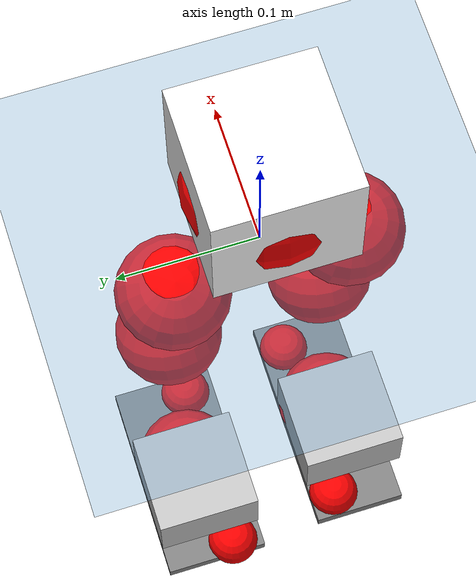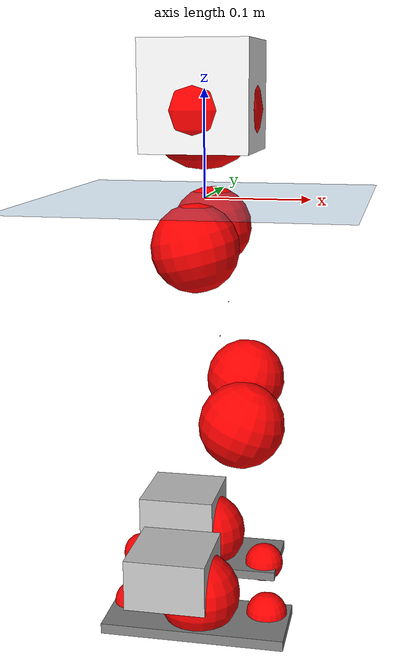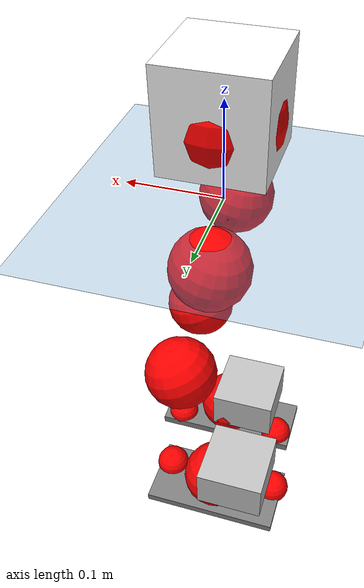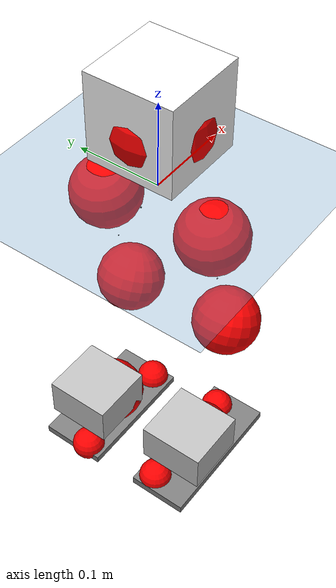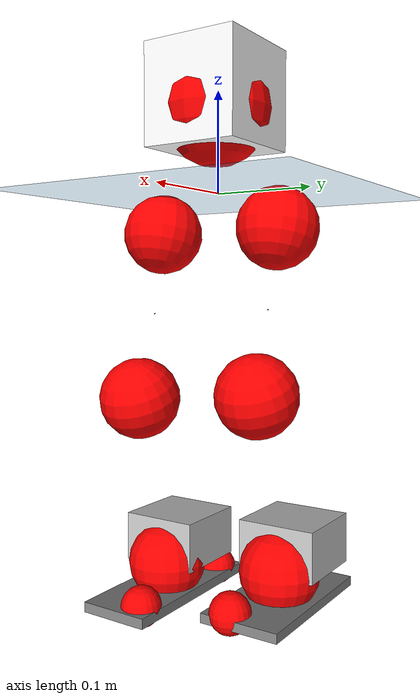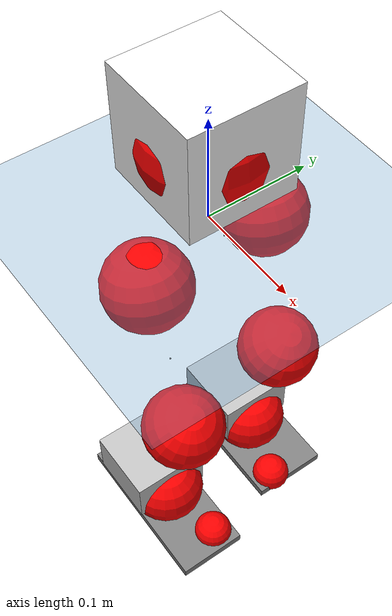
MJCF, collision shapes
<mujoco model="pi_12dof_release_v1">
  <compiler angle="radian" assetdir="assets" balanceinertia="true" inertiafromgeom="false"/>

  <option timestep="0.005" density="1.2" viscosity="2e-05"/>

  <size nkey="1"/>

  <visual>
    <quality shadowsize="8192"/>
    <map shadowclip="0.5"/>
  </visual>

  <default>
    <default class="/">
      <joint armature="0.01" damping="0.01" frictionloss="0.01"/>
      <geom contype="0" conaffinity="0" group="1" solref="-1000 -80"/>
      <site size="0.01 0.005 0.005" group="5"/>
      <general forcelimited="true" biastype="affine" gainprm="20" biasprm="0 -20 -0.5"/>
      <default class="foot">
        <geom size="0.0845 0.036 0.005" type="box" condim="6" group="4" priority="1" friction="0.9 0.2 0.2" solimp="0.015 1 0.005"/>
      </default>
      <default class="reward_collision_sphere">
        <geom group="5" rgba="1 0 0 1"/>
      </default>
    </default>
  </default>

  <asset>
    <texture type="skybox" colorspace="auto" name="//unnamed_texture_0" builtin="gradient" rgb1="0.95 0.95 0.95" rgb2="0.95 0.95 0.95" width="100" height="600"/>
    <texture type="2d" colorspace="auto" name="texplane" builtin="checker" rgb1="0.345 0.575 0.748" rgb2="0.345 0.575 0.748" markrgb="1 1 1" width="512" height="512"/>
    <material name="MatPlane" class="/" texture="texplane" texuniform="true" texrepeat="2 2" specular="0.9"/>
    <mesh name="baselink_1" class="/" file="baselink_1.STL"/>
    <mesh name="r_hip_pitch_link" class="/" file="r_hip_pitch_link.STL"/>
    <mesh name="r_hip_roll_link" class="/" file="r_hip_roll_link.STL"/>
    <mesh name="r_thigh_link" class="/" file="r_thigh_link.STL"/>
    <mesh name="r_calf_link" class="/" file="r_calf_link.STL"/>
    <mesh name="r_ankle_pitch_link" class="/" file="r_ankle_pitch_link.STL"/>
    <mesh name="r_ankle_roll_link" class="/" file="r_ankle_roll_link.STL"/>
    <mesh name="l_hip_pitch_link" class="/" file="l_hip_pitch_link.STL"/>
    <mesh name="l_hip_roll_link" class="/" file="l_hip_roll_link.STL"/>
    <mesh name="l_thigh_link" class="/" file="l_thigh_link.STL"/>
    <mesh name="l_calf_link" class="/" file="l_calf_link.STL"/>
    <mesh name="l_ankle_pitch_link" class="/" file="l_ankle_pitch_link.STL"/>
    <mesh name="l_ankle_roll_link" class="/" file="l_ankle_roll_link.STL"/>
  </asset>

  <worldbody>
    <geom name="floor" class="/" size="100 100 0.125" type="plane" group="0" material="MatPlane"/>
    <light name="toplight_shadow" class="/" pos="0 0 5" dir="0.0990148 0.0990148 -0.990148" type="directional" ambient="0.04 0.04 0.04" diffuse="0.55 0.55 0.55" specular="0.12 0.12 0.12"/>
    <light name="toplight_fill" class="/" pos="0 0 5" dir="0.0990148 0.0990148 -0.990148" type="directional" castshadow="false" ambient="0.04 0.04 0.04" diffuse="0.3 0.3 0.3" specular="0.08 0.08 0.08"/>
    <body name="trunk" pos="-0.000133007 -0.00283969 -0.00118522" quat="0.999999 -9.06399e-05 -0.000699363 -0.00123187">
      <inertial pos="-0.000245967 -0.00164165 0.0506494" quat="0.694542 -0.00284707 0.0141619 0.719307" mass="2.19861" diaginertia="0.00899341 0.00352565 0.00972371"/>
      <joint name="//unnamed_joint_0" type="free"/>
      <geom name="//unnamed_geom_1" class="/" type="mesh" density="0" rgba="1 1 1 1" mesh="baselink_1"/>
      <geom name="//unnamed_geom_2" class="/" size="0.0500773 0.0500773 0.0500773" pos="0 0 0.0945836" type="box" rgba="1 1 1 1"/>
      <geom name="//unnamed_geom_3" class="reward_collision_sphere" size="0.055085" pos="0 0 0.0827606"/>
      <site name="imu" class="/" pos="0.00510156 -0.00456215 -0.00451311" size="0.0100155"/>
      <camera name="track" class="/" pos="0 -1.66401 0" quat="0.707107 0.707107 0 0" mode="trackcom"/>
      <camera name="ego_camera" class="/" pos="0.0742755 0 0.212813" quat="-0.5 -0.5 0.5 0.5"/>
      <body name="r_hip_pitch_link" pos="0.00244739 -0.0187262 -0.0388532" quat="0.992199 -0.00028206 -0.124665 0.000272968">
        <inertial pos="0.00152554 -0.0490948 -0.00184751" quat="-0.0183995 0.705272 -0.0309136 0.708023" mass="0.37051" diaginertia="0.000104686 3.79525e-05 0.0001938"/>
        <joint name="r_hip_pitch_joint" class="/" pos="0 0 0" axis="-0.0021283 -0.999986 0.00476193" stiffness="0.00349897" range="-1.69128 1.30178" armature="0.0105169" damping="0.0200305" frictionloss="0.0108989"/>
        <geom name="//unnamed_geom_4" class="/" type="mesh" density="0" rgba="0.75294 0.75294 0.75294 1" mesh="r_hip_pitch_link"/>
        <geom name="//unnamed_geom_5" class="/" size="0.000500773 0.000500773 0.000500773" type="box" rgba="0.75294 0.75294 0.75294 1"/>
        <body name="r_hip_roll_link" pos="0.00281173 -0.043126 0.00156294" quat="1 -0.000151926 -0.000303273 0.000417897">
          <inertial pos="-0.00229321 -0.000381044 -0.0732951" quat="0.708632 -0.087676 -0.0808328 0.695428" mass="0.405287" diaginertia="0.00031139 0.000113422 0.000297923"/>
          <joint name="r_hip_roll_joint" class="/" pos="0 0 0" axis="-0.999921 -0.00636149 0.0108594" range="-0.114387 0.503599" armature="0.0114501" damping="0.0226998" frictionloss="0.0105321"/>
          <geom name="//unnamed_geom_6" class="/" type="mesh" density="0" rgba="0.75294 0.75294 0.75294 1" mesh="r_hip_roll_link"/>
          <geom name="//unnamed_geom_7" class="/" size="0.000500773 0.000500773 0.000500773" type="box" rgba="0.75294 0.75294 0.75294 1"/>
          <geom name="//unnamed_geom_8" class="reward_collision_sphere" size="0.0400618"/>
          <body name="r_thigh_link" pos="0.000867454 0.00500914 -0.0833237" quat="1 -2.01675e-05 0.000367151 -0.000633944">
            <inertial pos="-0.00160397 -0.00160322 -0.0588276" quat="0.739073 0.673581 -0.000873083 0.00768252" mass="0.111271" diaginertia="0.00011438 3.72398e-05 0.00013073"/>
            <joint name="r_thigh_joint" class="/" pos="0 0 0" axis="0.00727945 0.00621598 -0.999954" range="-0.329624 0.565502" armature="0.0113521" damping="0.00342283" frictionloss="0.0107791"/>
            <geom name="//unnamed_geom_9" class="/" type="mesh" density="0" rgba="0.75294 0.75294 0.75294 1" mesh="r_thigh_link"/>
            <geom name="//unnamed_geom_10" class="/" size="0.000500773 0.000500773 0.000500773" type="box" rgba="0.75294 0.75294 0.75294 1"/>
            <body name="r_calf_link" pos="-0.000517494 -0.00244005 -0.0859479" quat="0.947626 2.36619e-05 0.319382 4.11233e-05">
              <inertial pos="-6.51835e-05 0.00139788 -0.0844282" quat="0.999884 -0.00480168 -0.00327908 0.0141127" mass="0.798613" diaginertia="0.00323496 0.00139653 0.000410885"/>
              <joint name="r_calf_joint" class="/" pos="0 0 0" axis="-0.00289812 -0.999982 -0.00519276" range="-1.7029 0.657054" armature="0.0100249" damping="0" frictionloss="0.01099"/>
              <geom name="//unnamed_geom_11" class="/" type="mesh" density="0" rgba="0.75294 0.75294 0.75294 1" mesh="r_calf_link"/>
              <geom name="//unnamed_geom_12" class="/" size="0.000500773 0.000500773 0.000500773" type="box" rgba="0.75294 0.75294 0.75294 1"/>
              <geom name="//unnamed_geom_13" class="reward_collision_sphere" size="0.0400618"/>
              <body name="r_ankle_pitch_link" pos="-0.00167059 0.000631057 -0.167267" quat="0.980064 -1.3831e-05 -0.198682 -1.31501e-05">
                <inertial pos="0.00711005 0.000221447 0.00150398" quat="-0.00542457 0.705848 -0.000332804 0.708342" mass="0.178996" diaginertia="0.00028281 8.84442e-05 0.000276821"/>
                <joint name="r_ankle_pitch_joint" class="/" pos="0 0 0" axis="0.000902349 -1 -4.02597e-05" range="-1.35404 0.464791" armature="0.0111075" damping="0.00674474" frictionloss="0.0110857"/>
                <geom name="//unnamed_geom_14" class="/" type="mesh" density="0" rgba="0.75294 0.75294 0.75294 1" mesh="r_ankle_pitch_link"/>
                <geom name="//unnamed_geom_15" class="/" size="0.0390603 0.0400618 0.0250386" type="box" rgba="0.75294 0.75294 0.75294 1"/>
                <body name="r_ankle_roll_link" pos="0.0746827 0.00151783 0.0017942" quat="1 1.25722e-05 1.39033e-05 1.6573e-05">
                  <inertial pos="-0.0265537 0.00301992 -0.0180939" quat="0.557574 0.439416 0.435065 0.553845" mass="0.52756" diaginertia="0.00106756 0.000431618 0.000640368"/>
                  <joint name="r_ankle_roll_joint" class="/" pos="0 0 0" axis="-0.999998 -0.00143772 -0.00115298" stiffness="0.00849954" range="-0.130349 0.204101" armature="0.0105924" damping="0.0230623" frictionloss="0.0106344"/>
                  <geom name="//unnamed_geom_16" class="/" type="mesh" density="0" rgba="0.75294 0.75294 0.75294 1" mesh="r_ankle_roll_link"/>
                  <geom name="//unnamed_geom_17" class="/" type="mesh" rgba="0.75294 0.75294 0.75294 1" mesh="r_ankle_roll_link"/>
                  <geom name="right_foot" class="foot" size="0.0882628 0.0360945 0.00501021" pos="-0.0505074 0 -0.052021"/>
                  <geom name="//unnamed_geom_19" class="reward_collision_sphere" size="0.0400618" pos="-0.049517 0 -0.0236459"/>
                  <geom name="//unnamed_geom_20" class="reward_collision_sphere" size="0.0200309" pos="0.0148551 0.0166401 -0.0472918"/>
                  <geom name="//unnamed_geom_21" class="reward_collision_sphere" size="0.0200309" pos="-0.118841 0.0166401 -0.0472918"/>
                  <site name="right_foot" class="foot" pos="-0.0505074 0 -0.052021" size="0.0100155"/>
                </body>
              </body>
            </body>
          </body>
        </body>
      </body>
      <body name="l_hip_pitch_link" pos="-0.00329952 0.0221428 -0.0360877" quat="0.992201 0.000113704 -0.124647 -0.000545956">
        <inertial pos="0.000718002 0.0442897 0.00279945" quat="-0.0398196 0.706112 0.0301343 0.706337" mass="0.377799" diaginertia="0.000119585 3.96361e-05 0.000234919"/>
        <joint name="l_hip_pitch_joint" class="/" pos="0 0 0" axis="-0.00278287 0.99999 0.00341359" stiffness="0.00778798" range="-1.27113 1.79952" armature="0.0103585" damping="0.0062485" frictionloss="0.00979399"/>
        <geom name="//unnamed_geom_22" class="/" type="mesh" density="0" rgba="0.75294 0.75294 0.75294 1" mesh="l_hip_pitch_link"/>
        <geom name="//unnamed_geom_23" class="/" size="0.000500773 0.000500773 0.000500773" type="box" rgba="0.75294 0.75294 0.75294 1"/>
        <body name="l_hip_roll_link" pos="-0.00168831 0.0440602 0.00219293" quat="1 0.000253571 -2.13463e-05 -0.000778907">
          <inertial pos="-0.00227631 0.000749628 -0.07097" quat="0.69391 -0.0749095 -0.0898552 0.710496" mass="0.385187" diaginertia="0.000308001 0.000114888 0.000306067"/>
          <joint name="l_hip_roll_joint" class="/" pos="0 0 0" axis="-0.999925 0.0112147 0.00488727" stiffness="0.00574365" range="-0.496687 0.140818" armature="0.0105701" damping="0.00471376" frictionloss="0.00866188"/>
          <geom name="//unnamed_geom_24" class="/" type="mesh" density="0" rgba="0.75294 0.75294 0.75294 1" mesh="l_hip_roll_link"/>
          <geom name="//unnamed_geom_25" class="/" size="0.000500773 0.000500773 0.000500773" type="box" rgba="0.75294 0.75294 0.75294 1"/>
          <geom name="//unnamed_geom_26" class="reward_collision_sphere" size="0.0400618"/>
          <body name="l_thigh_link" pos="-0.00249982 -0.000617264 -0.0789436" quat="0.999999 0.000943968 -0.000668576 0.00067451">
            <inertial pos="7.66006e-05 0.00124981 -0.0550466" quat="0.675633 0.737222 0.00478705 -0.00109304" mass="0.110914" diaginertia="0.000114144 3.6198e-05 0.000128502"/>
            <joint name="l_thigh_joint" class="/" pos="0 0 0" axis="0.000626462 0.00224657 -0.999997" stiffness="0.0101022" range="-0.576269 0.308274" armature="0.00853803" damping="0" frictionloss="0.0106974"/>
            <geom name="//unnamed_geom_27" class="/" type="mesh" density="0" rgba="0.75294 0.75294 0.75294 1" mesh="l_thigh_link"/>
            <geom name="//unnamed_geom_28" class="/" size="0.000500773 0.000500773 0.000500773" type="box" rgba="0.75294 0.75294 0.75294 1"/>
            <body name="l_calf_link" pos="-0.00191757 -0.0012193 -0.0818854" quat="0.947564 -3.23352e-05 0.319566 0.000228691">
              <inertial pos="-0.000740618 0.000899663 -0.0835308" quat="0.99998 0.0034406 0.00168279 0.00509866" mass="0.794685" diaginertia="0.00325379 0.00137085 0.000393627"/>
              <joint name="l_calf_joint" class="/" pos="0 0 0" axis="-0.00969741 0.999928 -0.00701484" range="-0.602702 1.6251" armature="0.00889029" damping="0.0104996" frictionloss="0.0104665"/>
              <geom name="//unnamed_geom_29" class="/" type="mesh" density="0" rgba="0.75294 0.75294 0.75294 1" mesh="l_calf_link"/>
              <geom name="//unnamed_geom_30" class="/" size="0.000500773 0.000500773 0.000500773" type="box" rgba="0.75294 0.75294 0.75294 1"/>
              <geom name="//unnamed_geom_31" class="reward_collision_sphere" size="0.0400618"/>
              <body name="l_ankle_pitch_link" pos="-0.00286474 0.00333624 -0.167997" quat="0.980125 0.000693617 -0.19838 -0.000460721">
                <inertial pos="0.00562775 -0.00361441 0.000825445" quat="-0.00474987 0.708427 0.00276189 0.705763" mass="0.179764" diaginertia="0.00029773 8.76303e-05 0.000267867"/>
                <joint name="l_ankle_pitch_joint" class="/" pos="0 0 0" axis="-0.000683272 0.999989 0.00474621" stiffness="0.00262983" range="-0.489079 1.30438" armature="0.00904672" damping="0.0204894" frictionloss="0.00860513"/>
                <geom name="//unnamed_geom_32" class="/" type="mesh" density="0" rgba="0.75294 0.75294 0.75294 1" mesh="l_ankle_pitch_link"/>
                <geom name="//unnamed_geom_33" class="/" size="0.0390603 0.0400618 0.0250386" type="box" rgba="0.75294 0.75294 0.75294 1"/>
                <body name="l_ankle_roll_link" pos="0.076446 -0.0011215 0.00168643" quat="1 -0.00013229 -7.99499e-06 -0.00022424">
                  <inertial pos="-0.0273506 -0.0011356 -0.0163968" quat="0.560682 0.429919 0.434569 0.55853" mass="0.5384" diaginertia="0.00108833 0.000422917 0.000661416"/>
                  <joint name="l_ankle_roll_joint" class="/" pos="0 0 0" axis="-0.999995 0.00184354 -0.00269798" range="-0.127127 0.159923" armature="0.0103239" damping="0" frictionloss="0.00916052"/>
                  <geom name="//unnamed_geom_34" class="/" type="mesh" density="0" rgba="0.75294 0.75294 0.75294 1" mesh="l_ankle_roll_link"/>
                  <geom name="//unnamed_geom_35" class="/" type="mesh" rgba="0.75294 0.75294 0.75294 1" mesh="l_ankle_roll_link"/>
                  <geom name="left_foot" class="foot" size="0.0796673 0.040186 0.00456346" pos="-0.0505074 0 -0.052021"/>
                  <geom name="//unnamed_geom_37" class="reward_collision_sphere" size="0.0400618" pos="-0.049517 0 -0.0236459"/>
                  <geom name="//unnamed_geom_38" class="reward_collision_sphere" size="0.0200309" pos="0.0148551 -0.0166401 -0.0472918"/>
                  <geom name="//unnamed_geom_39" class="reward_collision_sphere" size="0.0200309" pos="-0.118841 -0.0166401 -0.0472918"/>
                  <site name="left_foot" class="foot" pos="-0.0505074 0 -0.052021" size="0.0100155"/>
                </body>
              </body>
            </body>
          </body>
        </body>
      </body>
    </body>
  </worldbody>

  <contact>
    <pair class="/" geom1="floor" geom2="right_foot" name="//unnamed_contact_1"/>
    <pair class="/" geom1="floor" geom2="left_foot" name="//unnamed_contact_0"/>
  </contact>

  <actuator>
    <general name="r_hip_pitch_joint" class="/" joint="r_hip_pitch_joint" forcerange="-19.4973 19.4973" gainprm="18.9117" biasprm="0 -18.9117 -0.541681"/>
    <general name="r_hip_roll_joint" class="/" joint="r_hip_roll_joint" forcerange="-21.9167 21.9167" gainprm="18.9117" biasprm="0 -18.9117 -0.541681"/>
    <general name="r_thigh_joint" class="/" joint="r_thigh_joint" forcerange="-21.157 21.157" gainprm="18.9117" biasprm="0 -18.9117 -0.541681"/>
    <general name="r_calf_joint" class="/" joint="r_calf_joint" forcerange="-20.2697 20.2697" gainprm="18.9117" biasprm="0 -18.9117 -0.541681"/>
    <general name="r_ankle_pitch_joint" class="/" joint="r_ankle_pitch_joint" forcerange="-21.2158 21.2158" gainprm="18.9117" biasprm="0 -18.9117 -0.541681"/>
    <general name="r_ankle_roll_joint" class="/" joint="r_ankle_roll_joint" forcerange="-23.129 23.129" gainprm="18.9117" biasprm="0 -18.9117 -0.541681"/>
    <general name="l_hip_pitch_joint" class="/" joint="l_hip_pitch_joint" forcerange="-23.0108 23.0108" gainprm="18.9117" biasprm="0 -18.9117 -0.541681"/>
    <general name="l_hip_roll_joint" class="/" joint="l_hip_roll_joint" forcerange="-20.6685 20.6685" gainprm="18.9117" biasprm="0 -18.9117 -0.541681"/>
    <general name="l_thigh_joint" class="/" joint="l_thigh_joint" forcerange="-20.4915 20.4915" gainprm="18.9117" biasprm="0 -18.9117 -0.541681"/>
    <general name="l_calf_joint" class="/" joint="l_calf_joint" forcerange="-19.0243 19.0243" gainprm="18.9117" biasprm="0 -18.9117 -0.541681"/>
    <general name="l_ankle_pitch_joint" class="/" joint="l_ankle_pitch_joint" forcerange="-21.4992 21.4992" gainprm="18.9117" biasprm="0 -18.9117 -0.541681"/>
    <general name="l_ankle_roll_joint" class="/" joint="l_ankle_roll_joint" forcerange="-18.8078 18.8078" gainprm="18.9117" biasprm="0 -18.9117 -0.541681"/>
  </actuator>

  <sensor>
    <gyro site="imu" name="imu_angular_velocity"/>
    <velocimeter site="imu" name="imu_linear_velocity"/>
    <framelinvel objtype="site" objname="left_foot" name="left_foot_global_linear_velocity"/>
    <framelinvel objtype="site" objname="right_foot" name="right_foot_global_linear_velocity"/>
  </sensor>

  <keyframe>
    <key name="home" qpos="0 0 0.291 1 0 0 0 0.4 0 0 -0.8 0.4 0 -0.4 0 0 0.8 -0.4 0"/>
  </keyframe>
</mujoco>
